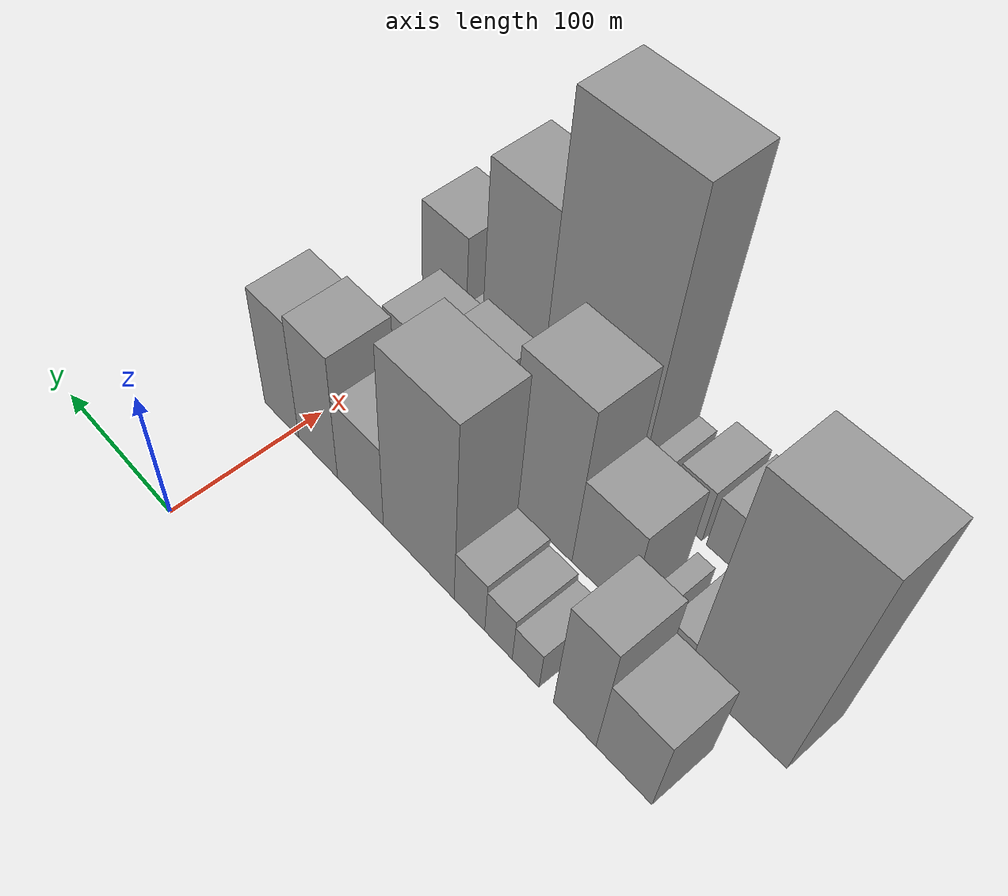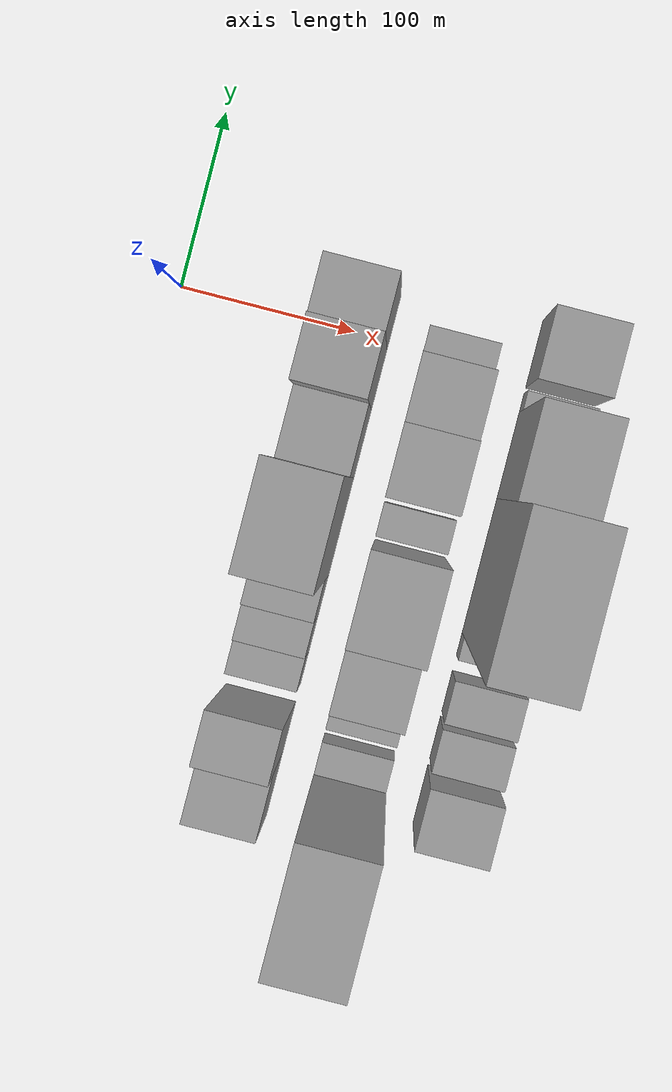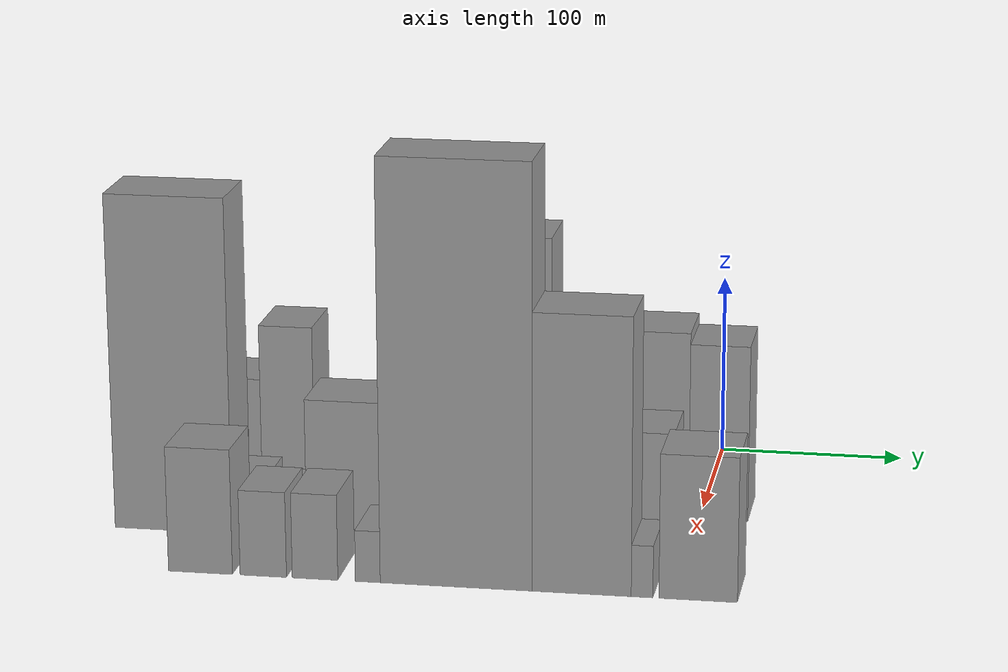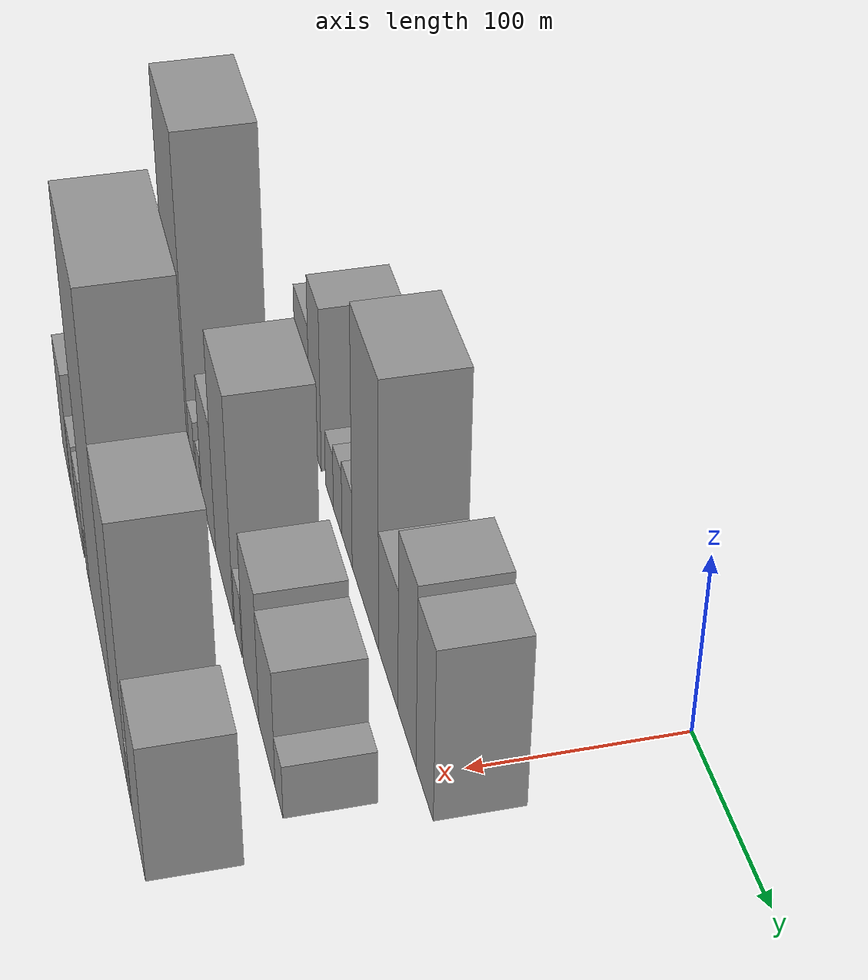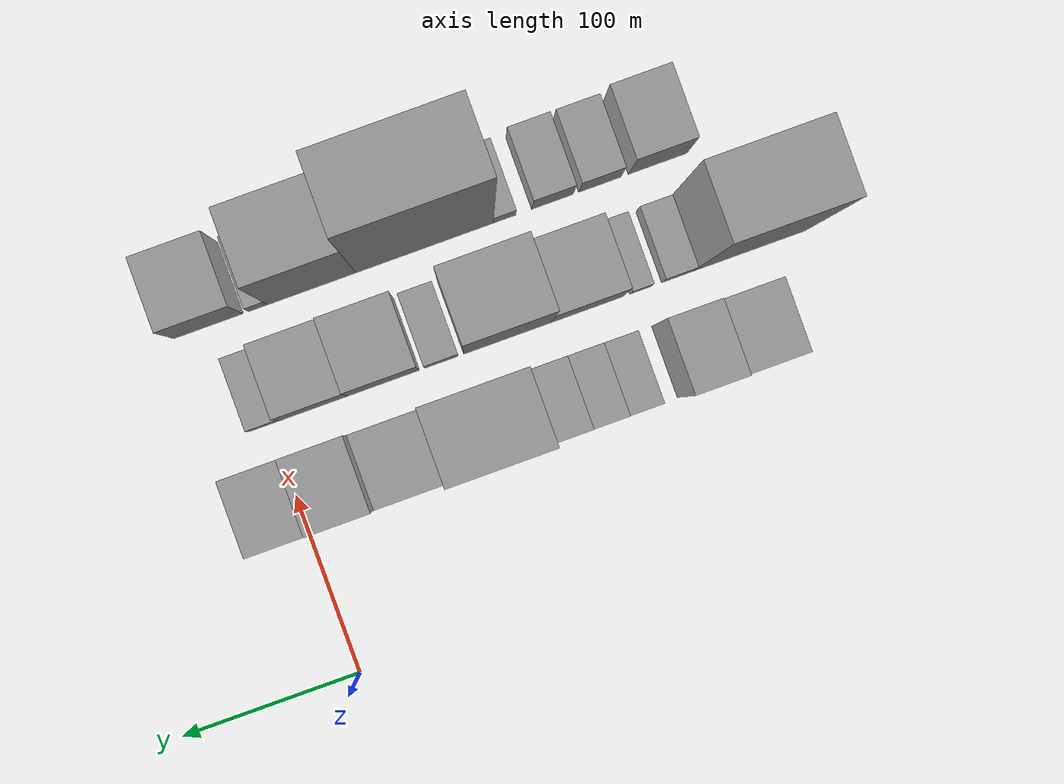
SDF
<sdf version="1.6">
 <world name="default">
  <model name="building_9">
   <static>1</static>
   <pose>100.0000 -254.7991 0 0.000000 0.000000 0.000000</pose>
   <link name="link">
    <pose>0 0 33.00 0 0 0</pose>
    <collision name="collision"><geometry><box><size>40.0000 36.3728 66.0000</size></box></geometry></collision>
    <visual name="visual">
     <cast_shadows>0</cast_shadows>
     <geometry><box><size>40.0000 36.3728 66.0000</size></box></geometry>
     <material>
      <script>
       <uri>model://grey_wall/materials/scripts</uri>
       <uri>model://grey_wall/materials/textures</uri>
       <name>vrc/grey_wall</name>
      </script>
     </material>
    </visual>
   </link>
  </model>
  <model name="building_10">
   <static>1</static>
   <pose>100.0000 -222.1280 0 0.000000 0.000000 0.000000</pose>
   <link name="link">
    <pose>0 0 48.00 0 0 0</pose>
    <collision name="collision"><geometry><box><size>40.0000 28.9694 96.0000</size></box></geometry></collision>
    <visual name="visual">
     <cast_shadows>0</cast_shadows>
     <geometry><box><size>40.0000 28.9694 96.0000</size></box></geometry>
     <material>
      <script>
       <uri>model://grey_wall/materials/scripts</uri>
       <uri>model://grey_wall/materials/textures</uri>
       <name>vrc/grey_wall</name>
      </script>
     </material>
    </visual>
   </link>
  </model>
  <model name="building_11">
   <static>1</static>
   <pose>100.0000 -188.0623 0 0.000000 0.000000 0.000000</pose>
   <link name="link">
    <pose>0 0 16.50 0 0 0</pose>
    <collision name="collision"><geometry><box><size>40.0000 19.1621 33.0000</size></box></geometry></collision>
    <visual name="visual">
     <cast_shadows>0</cast_shadows>
     <geometry><box><size>40.0000 19.1621 33.0000</size></box></geometry>
     <material>
      <script>
       <uri>model://grey_wall/materials/scripts</uri>
       <uri>model://grey_wall/materials/textures</uri>
       <name>vrc/grey_wall</name>
      </script>
     </material>
    </visual>
   </link>
  </model>
  <model name="building_12">
   <static>1</static>
   <pose>100.0000 -168.3944 0 0.000000 0.000000 0.000000</pose>
   <link name="link">
    <pose>0 0 19.50 0 0 0</pose>
    <collision name="collision"><geometry><box><size>40.0000 20.1737 39.0000</size></box></geometry></collision>
    <visual name="visual">
     <cast_shadows>0</cast_shadows>
     <geometry><box><size>40.0000 20.1737 39.0000</size></box></geometry>
     <material>
      <script>
       <uri>model://grey_wall/materials/scripts</uri>
       <uri>model://grey_wall/materials/textures</uri>
       <name>vrc/grey_wall</name>
      </script>
     </material>
    </visual>
   </link>
  </model>
  <model name="building_13">
   <static>1</static>
   <pose>100.0000 -146.7684 0 0.000000 0.000000 0.000000</pose>
   <link name="link">
    <pose>0 0 22.50 0 0 0</pose>
    <collision name="collision"><geometry><box><size>40.0000 23.0784 45.0000</size></box></geometry></collision>
    <visual name="visual">
     <cast_shadows>0</cast_shadows>
     <geometry><box><size>40.0000 23.0784 45.0000</size></box></geometry>
     <material>
      <script>
       <uri>model://grey_wall/materials/scripts</uri>
       <uri>model://grey_wall/materials/textures</uri>
       <name>vrc/grey_wall</name>
      </script>
     </material>
    </visual>
   </link>
  </model>
  <model name="building_14">
   <static>1</static>
   <pose>100.0000 -107.0649 0 0.000000 0.000000 0.000000</pose>
   <link name="link">
    <pose>0 0 75.00 0 0 0</pose>
    <collision name="collision"><geometry><box><size>40.0000 56.3285 150.0000</size></box></geometry></collision>
    <visual name="visual">
     <cast_shadows>0</cast_shadows>
     <geometry><box><size>40.0000 56.3285 150.0000</size></box></geometry>
     <material>
      <script>
       <uri>model://grey_wall/materials/scripts</uri>
       <uri>model://grey_wall/materials/textures</uri>
       <name>vrc/grey_wall</name>
      </script>
     </material>
    </visual>
   </link>
  </model>
  <model name="building_15">
   <static>1</static>
   <pose>100.0000 -59.4415 0 0.000000 0.000000 0.000000</pose>
   <link name="link">
    <pose>0 0 34.50 0 0 0</pose>
    <collision name="collision"><geometry><box><size>40.0000 38.9183 69.0000</size></box></geometry></collision>
    <visual name="visual">
     <cast_shadows>0</cast_shadows>
     <geometry><box><size>40.0000 38.9183 69.0000</size></box></geometry>
     <material>
      <script>
       <uri>model://grey_wall/materials/scripts</uri>
       <uri>model://grey_wall/materials/textures</uri>
       <name>vrc/grey_wall</name>
      </script>
     </material>
    </visual>
   </link>
  </model>
  <model name="building_16">
   <static>1</static>
   <pose>100.0000 -22.7742 0 0.000000 0.000000 0.000000</pose>
   <link name="link">
    <pose>0 0 51.00 0 0 0</pose>
    <collision name="collision"><geometry><box><size>40.0000 34.4164 102.0000</size></box></geometry></collision>
    <visual name="visual">
     <cast_shadows>0</cast_shadows>
     <geometry><box><size>40.0000 34.4164 102.0000</size></box></geometry>
     <material>
      <script>
       <uri>model://grey_wall/materials/scripts</uri>
       <uri>model://grey_wall/materials/textures</uri>
       <name>vrc/grey_wall</name>
      </script>
     </material>
    </visual>
   </link>
  </model>
  <model name="building_17">
   <static>1</static>
   <pose>100.0000 10.1270 0 0.000000 0.000000 0.000000</pose>
   <link name="link">
    <pose>0 0 48.00 0 0 0</pose>
    <collision name="collision"><geometry><box><size>40.0000 31.3859 96.0000</size></box></geometry></collision>
    <visual name="visual">
     <cast_shadows>0</cast_shadows>
     <geometry><box><size>40.0000 31.3859 96.0000</size></box></geometry>
     <material>
      <script>
       <uri>model://grey_wall/materials/scripts</uri>
       <uri>model://grey_wall/materials/textures</uri>
       <name>vrc/grey_wall</name>
      </script>
     </material>
    </visual>
   </link>
  </model>
  <model name="building_47">
   <static>1</static>
   <pose>160.0000 -269.9182 0 0.000000 0.000000 0.000000</pose>
   <link name="link">
    <pose>0 0 90.00 0 0 0</pose>
    <collision name="collision"><geometry><box><size>40.0000 63.0109 180.0000</size></box></geometry></collision>
    <visual name="visual">
     <cast_shadows>0</cast_shadows>
     <geometry><box><size>40.0000 63.0109 180.0000</size></box></geometry>
     <material>
      <script>
       <uri>model://grey_wall/materials/scripts</uri>
       <uri>model://grey_wall/materials/textures</uri>
       <name>vrc/grey_wall</name>
      </script>
     </material>
    </visual>
   </link>
  </model>
  <model name="building_48">
   <static>1</static>
   <pose>160.0000 -229.4392 0 0.000000 0.000000 0.000000</pose>
   <link name="link">
    <pose>0 0 15.00 0 0 0</pose>
    <collision name="collision"><geometry><box><size>40.0000 17.9471 30.0000</size></box></geometry></collision>
    <visual name="visual">
     <cast_shadows>0</cast_shadows>
     <geometry><box><size>40.0000 17.9471 30.0000</size></box></geometry>
     <material>
      <script>
       <uri>model://grey_wall/materials/scripts</uri>
       <uri>model://grey_wall/materials/textures</uri>
       <name>vrc/grey_wall</name>
      </script>
     </material>
    </visual>
   </link>
  </model>
  <model name="building_49">
   <static>1</static>
   <pose>160.0000 -208.4997 0 0.000000 0.000000 0.000000</pose>
   <link name="link">
    <pose>0 0 12.00 0 0 0</pose>
    <collision name="collision"><geometry><box><size>40.0000 11.9319 24.0000</size></box></geometry></collision>
    <visual name="visual">
     <cast_shadows>0</cast_shadows>
     <geometry><box><size>40.0000 11.9319 24.0000</size></box></geometry>
     <material>
      <script>
       <uri>model://grey_wall/materials/scripts</uri>
       <uri>model://grey_wall/materials/textures</uri>
       <name>vrc/grey_wall</name>
      </script>
     </material>
    </visual>
   </link>
  </model>
  <model name="building_50">
   <static>1</static>
   <pose>160.0000 -178.2125 0 0.000000 0.000000 0.000000</pose>
   <link name="link">
    <pose>0 0 37.50 0 0 0</pose>
    <collision name="collision"><geometry><box><size>40.0000 40.6425 75.0000</size></box></geometry></collision>
    <visual name="visual">
     <cast_shadows>0</cast_shadows>
     <geometry><box><size>40.0000 40.6425 75.0000</size></box></geometry>
     <material>
      <script>
       <uri>model://grey_wall/materials/scripts</uri>
       <uri>model://grey_wall/materials/textures</uri>
       <name>vrc/grey_wall</name>
      </script>
     </material>
    </visual>
   </link>
  </model>
  <model name="building_51">
   <static>1</static>
   <pose>160.0000 -133.4614 0 0.000000 0.000000 0.000000</pose>
   <link name="link">
    <pose>0 0 64.50 0 0 0</pose>
    <collision name="collision"><geometry><box><size>40.0000 48.8598 129.0000</size></box></geometry></collision>
    <visual name="visual">
     <cast_shadows>0</cast_shadows>
     <geometry><box><size>40.0000 48.8598 129.0000</size></box></geometry>
     <material>
      <script>
       <uri>model://grey_wall/materials/scripts</uri>
       <uri>model://grey_wall/materials/textures</uri>
       <name>vrc/grey_wall</name>
      </script>
     </material>
    </visual>
   </link>
  </model>
  <model name="building_52">
   <static>1</static>
   <pose>160.0000 -96.6201 0 0.000000 0.000000 0.000000</pose>
   <link name="link">
    <pose>0 0 18.00 0 0 0</pose>
    <collision name="collision"><geometry><box><size>40.0000 18.8228 36.0000</size></box></geometry></collision>
    <visual name="visual">
     <cast_shadows>0</cast_shadows>
     <geometry><box><size>40.0000 18.8228 36.0000</size></box></geometry>
     <material>
      <script>
       <uri>model://grey_wall/materials/scripts</uri>
       <uri>model://grey_wall/materials/textures</uri>
       <name>vrc/grey_wall</name>
      </script>
     </material>
    </visual>
   </link>
  </model>
  <model name="building_53">
   <static>1</static>
   <pose>160.0000 -64.4087 0 0.000000 0.000000 0.000000</pose>
   <link name="link">
    <pose>0 0 37.50 0 0 0</pose>
    <collision name="collision"><geometry><box><size>40.0000 39.6000 75.0000</size></box></geometry></collision>
    <visual name="visual">
     <cast_shadows>0</cast_shadows>
     <geometry><box><size>40.0000 39.6000 75.0000</size></box></geometry>
     <material>
      <script>
       <uri>model://grey_wall/materials/scripts</uri>
       <uri>model://grey_wall/materials/textures</uri>
       <name>vrc/grey_wall</name>
      </script>
     </material>
    </visual>
   </link>
  </model>
  <model name="building_54">
   <static>1</static>
   <pose>160.0000 -25.6435 0 0.000000 0.000000 0.000000</pose>
   <link name="link">
    <pose>0 0 33.00 0 0 0</pose>
    <collision name="collision"><geometry><box><size>40.0000 37.9305 66.0000</size></box></geometry></collision>
    <visual name="visual">
     <cast_shadows>0</cast_shadows>
     <geometry><box><size>40.0000 37.9305 66.0000</size></box></geometry>
     <material>
      <script>
       <uri>model://grey_wall/materials/scripts</uri>
       <uri>model://grey_wall/materials/textures</uri>
       <name>vrc/grey_wall</name>
      </script>
     </material>
    </visual>
   </link>
  </model>
  <model name="building_55">
   <static>1</static>
   <pose>160.0000 2.1605 0 0.000000 0.000000 0.000000</pose>
   <link name="link">
    <pose>0 0 15.00 0 0 0</pose>
    <collision name="collision"><geometry><box><size>40.0000 17.6775 30.0000</size></box></geometry></collision>
    <visual name="visual">
     <cast_shadows>0</cast_shadows>
     <geometry><box><size>40.0000 17.6775 30.0000</size></box></geometry>
     <material>
      <script>
       <uri>model://grey_wall/materials/scripts</uri>
       <uri>model://grey_wall/materials/textures</uri>
       <name>vrc/grey_wall</name>
      </script>
     </material>
    </visual>
   </link>
  </model>
  <model name="building_82">
   <static>1</static>
   <pose>220.0000 -239.9013 0 0.000000 0.000000 0.000000</pose>
   <link name="link">
    <pose>0 0 33.00 0 0 0</pose>
    <collision name="collision"><geometry><box><size>40.0000 33.1918 66.0000</size></box></geometry></collision>
    <visual name="visual">
     <cast_shadows>0</cast_shadows>
     <geometry><box><size>40.0000 33.1918 66.0000</size></box></geometry>
     <material>
      <script>
       <uri>model://grey_wall/materials/scripts</uri>
       <uri>model://grey_wall/materials/textures</uri>
       <name>vrc/grey_wall</name>
      </script>
     </material>
    </visual>
   </link>
  </model>
  <model name="building_83">
   <static>1</static>
   <pose>220.0000 -207.3462 0 0.000000 0.000000 0.000000</pose>
   <link name="link">
    <pose>0 0 22.50 0 0 0</pose>
    <collision name="collision"><geometry><box><size>40.0000 23.9185 45.0000</size></box></geometry></collision>
    <visual name="visual">
     <cast_shadows>0</cast_shadows>
     <geometry><box><size>40.0000 23.9185 45.0000</size></box></geometry>
     <material>
      <script>
       <uri>model://grey_wall/materials/scripts</uri>
       <uri>model://grey_wall/materials/textures</uri>
       <name>vrc/grey_wall</name>
      </script>
     </material>
    </visual>
   </link>
  </model>
  <model name="building_84">
   <static>1</static>
   <pose>220.0000 -180.6785 0 0.000000 0.000000 0.000000</pose>
   <link name="link">
    <pose>0 0 22.50 0 0 0</pose>
    <collision name="collision"><geometry><box><size>40.0000 23.4168 45.0000</size></box></geometry></collision>
    <visual name="visual">
     <cast_shadows>0</cast_shadows>
     <geometry><box><size>40.0000 23.4168 45.0000</size></box></geometry>
     <material>
      <script>
       <uri>model://grey_wall/materials/scripts</uri>
       <uri>model://grey_wall/materials/textures</uri>
       <name>vrc/grey_wall</name>
      </script>
     </material>
    </visual>
   </link>
  </model>
  <model name="building_85">
   <static>1</static>
   <pose>220.0000 -153.6174 0 0.000000 0.000000 0.000000</pose>
   <link name="link">
    <pose>0 0 13.50 0 0 0</pose>
    <collision name="collision"><geometry><box><size>40.0000 12.7053 27.0000</size></box></geometry></collision>
    <visual name="visual">
     <cast_shadows>0</cast_shadows>
     <geometry><box><size>40.0000 12.7053 27.0000</size></box></geometry>
     <material>
      <script>
       <uri>model://grey_wall/materials/scripts</uri>
       <uri>model://grey_wall/materials/textures</uri>
       <name>vrc/grey_wall</name>
      </script>
     </material>
    </visual>
   </link>
  </model>
  <model name="building_86">
   <static>1</static>
   <pose>220.0000 -108.6834 0 0.000000 0.000000 0.000000</pose>
   <link name="link">
    <pose>0 0 109.50 0 0 0</pose>
    <collision name="collision"><geometry><box><size>40.0000 77.1627 219.0000</size></box></geometry></collision>
    <visual name="visual">
     <cast_shadows>0</cast_shadows>
     <geometry><box><size>40.0000 77.1627 219.0000</size></box></geometry>
     <material>
      <script>
       <uri>model://grey_wall/materials/scripts</uri>
       <uri>model://grey_wall/materials/textures</uri>
       <name>vrc/grey_wall</name>
      </script>
     </material>
    </visual>
   </link>
  </model>
  <model name="building_87">
   <static>1</static>
   <pose>220.0000 -45.2883 0 0.000000 0.000000 0.000000</pose>
   <link name="link">
    <pose>0 0 72.00 0 0 0</pose>
    <collision name="collision"><geometry><box><size>40.0000 49.6276 144.0000</size></box></geometry></collision>
    <visual name="visual">
     <cast_shadows>0</cast_shadows>
     <geometry><box><size>40.0000 49.6276 144.0000</size></box></geometry>
     <material>
      <script>
       <uri>model://grey_wall/materials/scripts</uri>
       <uri>model://grey_wall/materials/textures</uri>
       <name>vrc/grey_wall</name>
      </script>
     </material>
    </visual>
   </link>
  </model>
  <model name="building_88">
   <static>1</static>
   <pose>220.0000 -15.0514 0 0.000000 0.000000 0.000000</pose>
   <link name="link">
    <pose>0 0 13.50 0 0 0</pose>
    <collision name="collision"><geometry><box><size>40.0000 10.8462 27.0000</size></box></geometry></collision>
    <visual name="visual">
     <cast_shadows>0</cast_shadows>
     <geometry><box><size>40.0000 10.8462 27.0000</size></box></geometry>
     <material>
      <script>
       <uri>model://grey_wall/materials/scripts</uri>
       <uri>model://grey_wall/materials/textures</uri>
       <name>vrc/grey_wall</name>
      </script>
     </material>
    </visual>
   </link>
  </model>
  <model name="building_89">
   <static>1</static>
   <pose>220.0000 12.8603 0 0.000000 0.000000 0.000000</pose>
   <link name="link">
    <pose>0 0 37.50 0 0 0</pose>
    <collision name="collision"><geometry><box><size>40.0000 38.9772 75.0000</size></box></geometry></collision>
    <visual name="visual">
     <cast_shadows>0</cast_shadows>
     <geometry><box><size>40.0000 38.9772 75.0000</size></box></geometry>
     <material>
      <script>
       <uri>model://grey_wall/materials/scripts</uri>
       <uri>model://grey_wall/materials/textures</uri>
       <name>vrc/grey_wall</name>
      </script>
     </material>
    </visual>
   </link>
  </model>
 </world>
</sdf>
